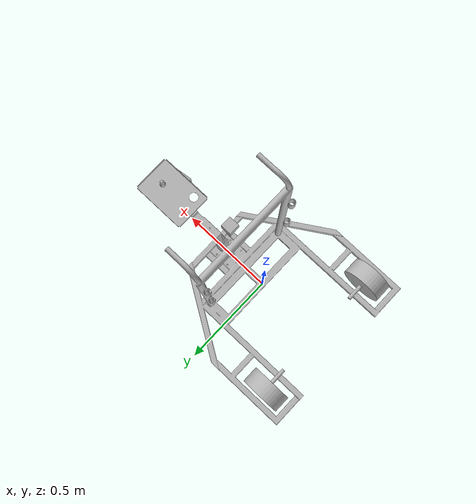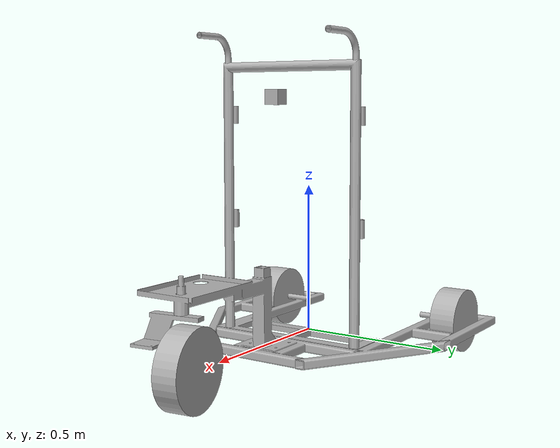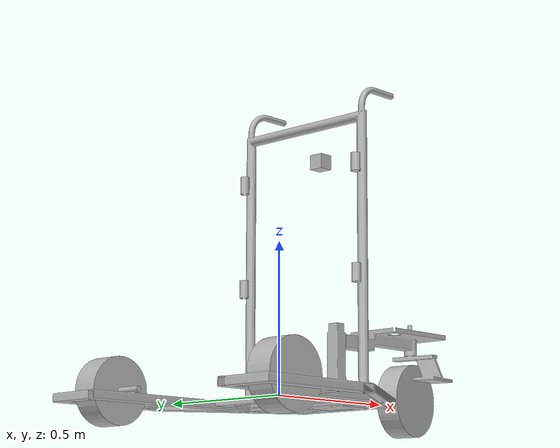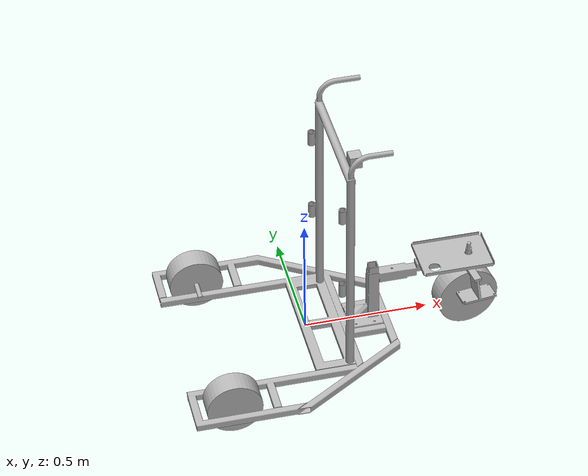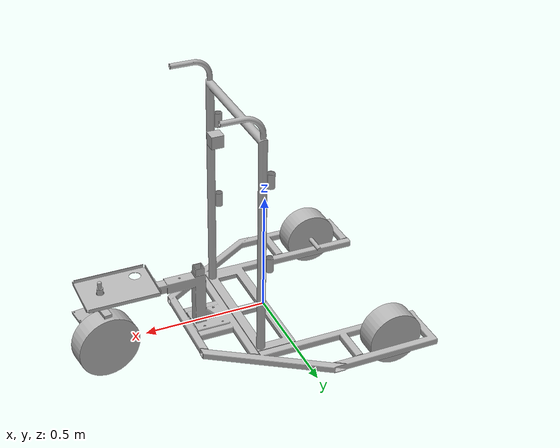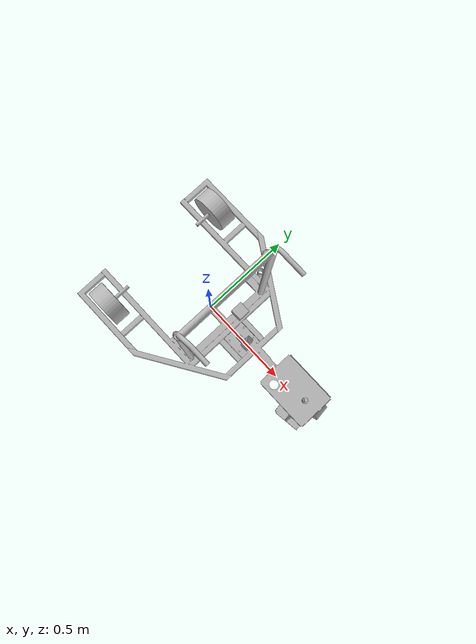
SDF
<sdf version="1.9">
  <model name="my_robot">

    <!-- BASE -->
    <link name="base_link">
      <inertial>
        <pose>0.18001 0 0.14277 0 0 0</pose>
        <mass>6.1354</mass>
        <inertia>
          <ixx>0.09231</ixx>
          <ixy>0.0077966</ixy>
          <ixz>-0.0068618</ixz>
          <iyy>0.095327</iyy>
          <iyz>-5.98e-05</iyz>
          <izz>0.056644</izz>
        </inertia>
      </inertial>
      <collision name="collision">
        <geometry>
          <mesh>
            <uri>file:///home/kisali/fyp_ws/src/robotdesign/meshes/base_link.STL</uri>
          </mesh>
        </geometry>
      </collision>
      <visual name="visual">
        <geometry>
          <mesh>
            <uri>file:///home/kisali/fyp_ws/src/robotdesign/meshes/base_link.STL</uri>
          </mesh>
        </geometry>
      </visual>
    </link>

    <!-- LEFT WHEEL -->
    <link name="leftwheel">
      <pose relative_to="leftwheeljoint">0 0 0 0 0 0</pose>
      <collision name="collision">
        <geometry>
          <mesh>
            <uri>file:///home/kisali/fyp_ws/src/robotdesign/meshes/leftwheel.STL</uri>
          </mesh>
        </geometry>
      </collision>
      <visual name="visual">
        <geometry>
          <mesh>
            <uri>file:///home/kisali/fyp_ws/src/robotdesign/meshes/leftwheel.STL</uri>
          </mesh>
        </geometry>
      </visual>
    </link>

    <joint name="leftwheeljoint" type="revolute">
      <pose relative_to="base_link">-0.3763 0.42197 0.01 1.5708 0 0</pose>
      <parent>base_link</parent>
      <child>leftwheel</child>
      <axis>
        <xyz>0 0 1</xyz>
	<limit>
          <lower>-1e16</lower>
           <upper>1e16</upper>
	   <effort>10</effort>
	   <velocity>10</velocity>
	</limit>

    <dynamics>
      <damping>0.1</damping>
      <friction>0</friction>
    </dynamics>
      </axis>
    </joint>

    <!-- RIGHT WHEEL -->
    <link name="rightwheel">
      <pose relative_to="rightwheeljoint">0 0 0 0 0 0</pose>
      <collision name="collision">
        <geometry>
          <mesh>
            <uri>file:///home/kisali/fyp_ws/src/robotdesign/meshes/rightwheel.STL</uri>
          </mesh>
        </geometry>
      </collision>
      <visual name="visual">
        <geometry>
          <mesh>
            <uri>file:///home/kisali/fyp_ws/src/robotdesign/meshes/rightwheel.STL</uri>
          </mesh>
        </geometry>
      </visual>
    </link>

    <joint name="rightwheeljoint" type="revolute">
      <pose relative_to="base_link">-0.3763 -0.42416 0.01 1.5708 0 0</pose>
      <parent>base_link</parent>
      <child>rightwheel</child>
      <axis>
        <xyz>0 0 -1</xyz>
        <limit>
      <lower>-1e16</lower>
      <upper>1e16</upper>
      <effort>10</effort>
      <velocity>10</velocity>
    </limit>

    <dynamics>
      <damping>0.1</damping>
      <friction>0</friction>
    </dynamics>
      </axis>
    </joint>

    <!-- FRONT -->
    <link name="front">
      <pose relative_to="steering_joint">0 0 0 0 0 0</pose>
      <collision name="collision">
        <geometry>
          <mesh>
            <uri>file:///home/kisali/fyp_ws/src/robotdesign/meshes/front.STL</uri>
          </mesh>
        </geometry>
      </collision>
      <visual name="visual">
        <geometry>
          <mesh>
            <uri>file:///home/kisali/fyp_ws/src/robotdesign/meshes/front.STL</uri>
          </mesh>
        </geometry>
      </visual>
    </link>

    <joint name="steering_joint" type="revolute">
      <pose relative_to="base_link">0.67273 0 0.2939 3.1416 0 0</pose>
      <parent>base_link</parent>
      <child>front</child>
      <axis>
        <xyz>0 0 -1</xyz>
        <limit>
  <lower>-1.0472</lower>
  <upper>1.0472</upper>
  <effort>10</effort>
  <velocity>5</velocity>
</limit>
      </axis>
    </joint>

    <!-- FRONT WHEEL -->
    <link name="frontwheel">
      <pose relative_to="front_wheel_joint">0 0 0 0 0 0</pose>
      <collision name="collision">
        <geometry>
          <mesh>
            <uri>file:///home/kisali/fyp_ws/src/robotdesign/meshes/frontwheel.STL</uri>
          </mesh>
        </geometry>
      </collision>
      <visual name="visual">
        <geometry>
          <mesh>
            <uri>file:///home/kisali/fyp_ws/src/robotdesign/meshes/frontwheel.STL</uri>
          </mesh>
        </geometry>
      </visual>
    </link>

    <joint name="front_wheel_joint" type="revolute">
      <pose relative_to="front">-0.0080085 -0.061174 0.26898 -1.5708 0 0</pose>
      <parent>front</parent>
      <child>frontwheel</child>
      <axis>
        <xyz>-0.12981 0 -0.99154</xyz>
            <limit>
      <lower>-1e16</lower>
      <upper>1e16</upper>
      <effort>10</effort>
      <velocity>10</velocity>
    </limit>

    <dynamics>
      <damping>0.1</damping>
      <friction>0</friction>
    </dynamics>
      </axis>
    </joint>

    <!-- ✅ CAMERA -->
    <link name="camera_link">
      <pose relative_to="base_link">0.2 0 0.8 0 0 0</pose>

      <visual name="camera_visual">
        <geometry>
          <box>
            <size>0.05 0.05 0.05</size>
          </box>
        </geometry>
      </visual>

      <sensor name="camera" type="camera">
        <always_on>true</always_on>
        <update_rate>30</update_rate>

        <camera>
          <horizontal_fov>1.047</horizontal_fov>
          <image>
            <width>640</width>
            <height>480</height>
          </image>
          <clip>
            <near>0.1</near>
            <far>100</far>
          </clip>
        </camera>
      </sensor>
    </link>

    <joint name="camera_joint" type="fixed">
      <parent>base_link</parent>
      <child>camera_link</child>
    </joint>
 <plugin filename="libgz-sim-joint-controller-system.so"
        name="gz::sim::systems::JointController">
  <joint_name>steering_joint</joint_name>
  </plugin>

   <plugin filename="libgz-sim-joint-controller-system.so"
        name="gz::sim::systems::JointController">
  <joint_name>front_wheel_joint</joint_name>

</plugin>

  </model>
</sdf>
